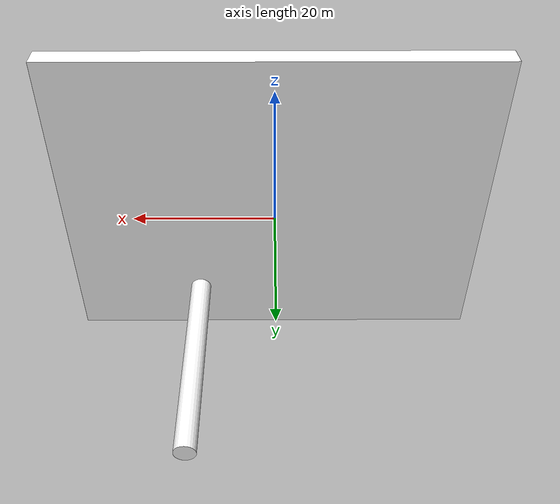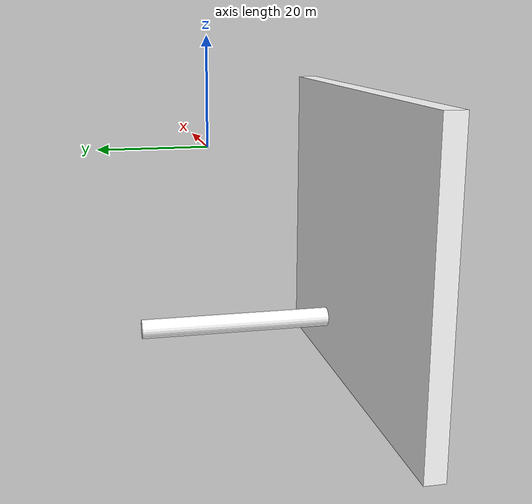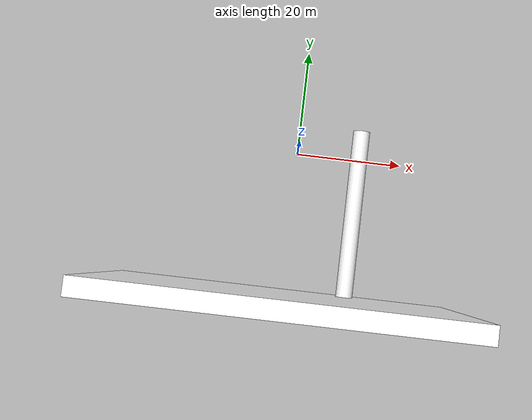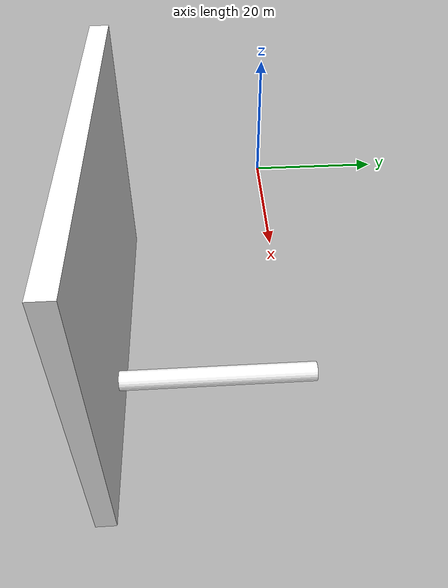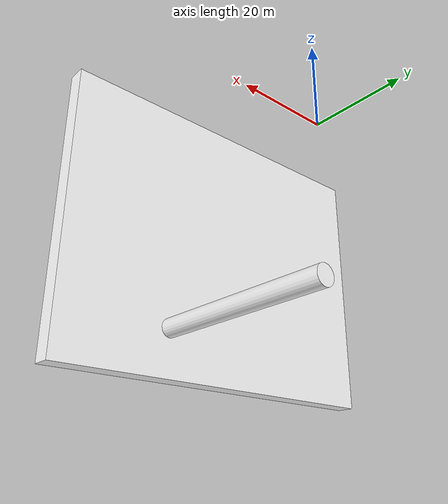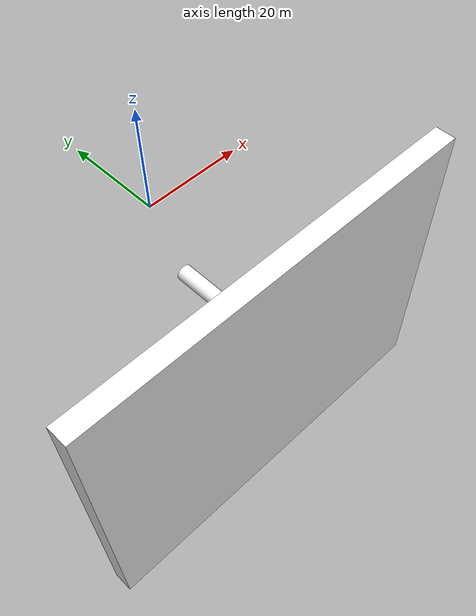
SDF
<?xml version="1.0" ?>
<sdf version="1.9">
  <model name="dam_structure">
    <static>true</static>

    <link name="dam_wall">
      <pose>0 -30 -20 0 0 0</pose>
      <inertial>
        <mass>1.0</mass>
        <inertia>
          <ixx>1.0</ixx><iyy>1.0</iyy><izz>1.0</izz>
          <ixy>0</ixy><ixz>0</ixz><iyz>0</iyz>
        </inertia>
      </inertial>
      <collision name="dam_wall_collision">
        <geometry>
          <box>
            <size>80 4 60</size>
          </box>
        </geometry>
      </collision>
      <visual name="dam_wall_visual">
        <geometry>
          <box>
            <size>80 4 60</size>
          </box>
        </geometry>
        <material>
          <ambient>0.55 0.55 0.5 1</ambient>
          <diffuse>1.0 1.0 1.0 1</diffuse>
          <specular>0.15 0.15 0.15 1</specular>
          <pbr>
            <metal>
              <albedo_map>materials/textures/concrete_albedo.png</albedo_map>
              <normal_map>materials/textures/concrete_normal.png</normal_map>
              <roughness_map>materials/textures/concrete_roughness.png</roughness_map>
            </metal>
          </pbr>
        </material>
      </visual>
    </link>

    <!-- Pipeline section running away from the dam face for the AUVs to
         inspect along its length, in addition to the wall face. -->
    <link name="pipe_section">
      <pose>15 -8 -40 -1.5708 0 0</pose>
      <inertial>
        <mass>1.0</mass>
        <inertia>
          <ixx>1.0</ixx><iyy>1.0</iyy><izz>1.0</izz>
          <ixy>0</ixy><ixz>0</ixz><iyz>0</iyz>
        </inertia>
      </inertial>
      <collision name="pipe_collision">
        <geometry>
          <cylinder>
            <radius>2</radius>
            <length>40</length>
          </cylinder>
        </geometry>
      </collision>
      <visual name="pipe_visual">
        <geometry>
          <cylinder>
            <radius>2</radius>
            <length>40</length>
          </cylinder>
        </geometry>
        <material>
          <ambient>0.35 0.35 0.4 1</ambient>
          <diffuse>1.0 1.0 1.0 1</diffuse>
          <specular>0.3 0.3 0.3 1</specular>
          <pbr>
            <metal>
              <albedo_map>materials/textures/rusty_metal_albedo.png</albedo_map>
              <normal_map>materials/textures/rusty_metal_normal.png</normal_map>
              <roughness_map>materials/textures/rusty_metal_roughness.png</roughness_map>
              <metalness_map>materials/textures/rusty_metal_metalness.png</metalness_map>
            </metal>
          </pbr>
        </material>
      </visual>
    </link>
  </model>
</sdf>
